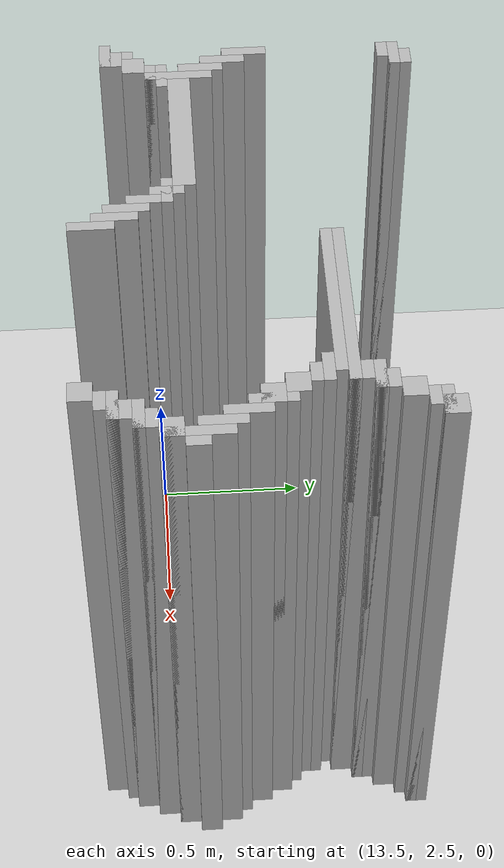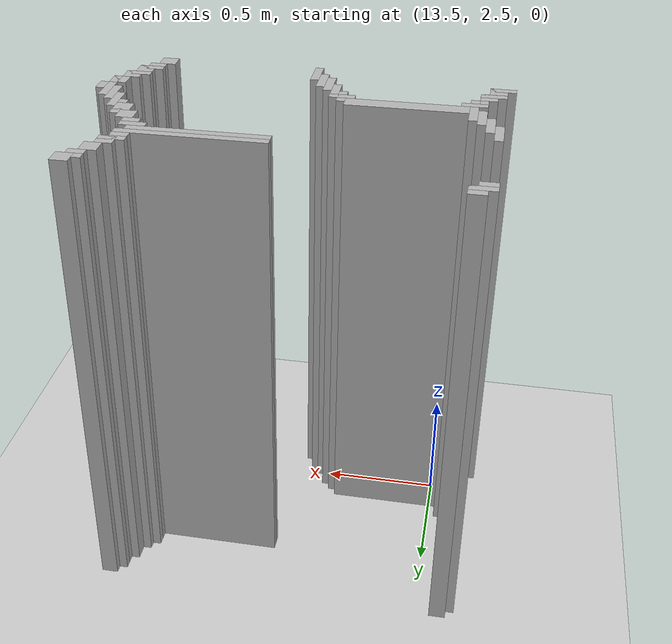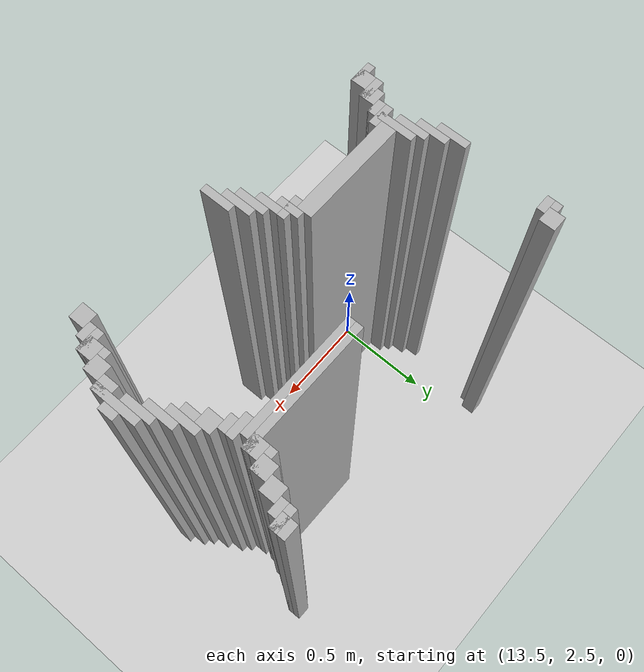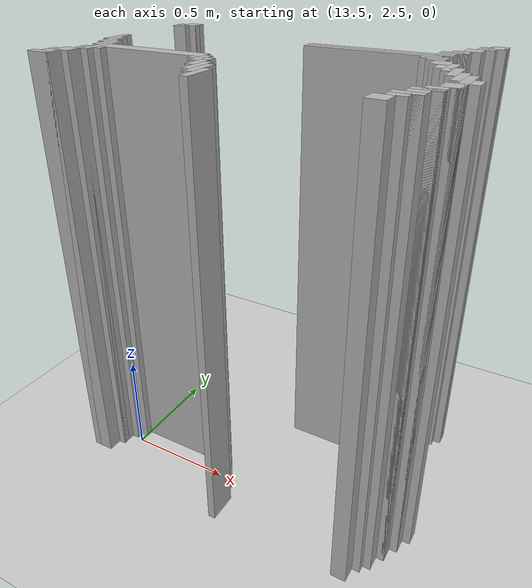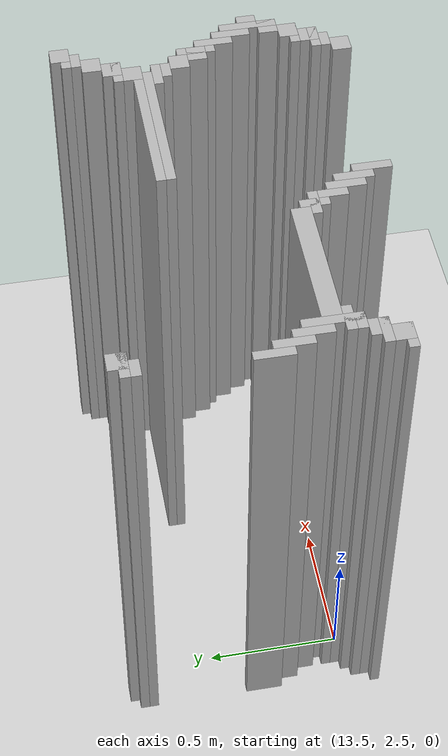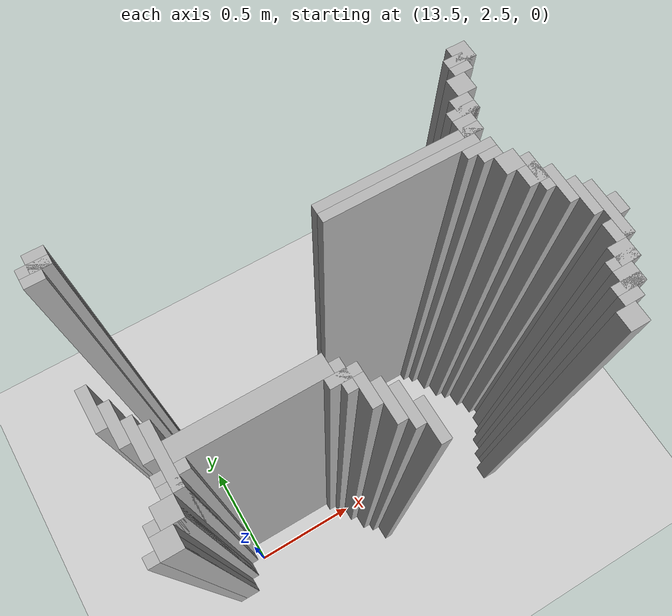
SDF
<sdf version="1.6">
 <world name="slam_world">
  <model name="ground_plane">
   <static>true</static>
   <link name="link">
    <collision name="collision">
     <geometry><plane><normal>0 0 1</normal><size>100 100</size></plane></geometry>
    </collision>
    <visual name="visual">
     <geometry><plane><normal>0 0 1</normal><size>100 100</size></plane></geometry>
     <material>
      <ambient>0.8 0.8 0.8 1</ambient>
      <diffuse>0.8 0.8 0.8 1</diffuse>
      <specular>0.8 0.8 0.8 1</specular>
     </material>
    </visual>
   </link>
  </model>
  <model name="wall_4657">
   <static>true</static>
   <pose>13.39907192575406 3.3062645011600926 1.0 0 0 0</pose>
   <link name="link">
    <collision name="collision">
     <geometry><box><size>0.06960556844547564 0.06960556844547564 2.0</size></box></geometry>
    </collision>
    <visual name="visual">
     <geometry><box><size>0.06960556844547564 0.06960556844547564 2.0</size></box></geometry>
     <material><ambient>0.5 0.5 0.5 1</ambient><diffuse>0.7 0.7 0.7 1</diffuse></material>
    </visual>
   </link>
  </model>
  <model name="wall_4658">
   <static>true</static>
   <pose>14.860788863109049 3.3062645011600926 1.0 0 0 0</pose>
   <link name="link">
    <collision name="collision">
     <geometry><box><size>0.06960556844547564 0.06960556844547564 2.0</size></box></geometry>
    </collision>
    <visual name="visual">
     <geometry><box><size>0.06960556844547564 0.06960556844547564 2.0</size></box></geometry>
     <material><ambient>0.5 0.5 0.5 1</ambient><diffuse>0.7 0.7 0.7 1</diffuse></material>
    </visual>
   </link>
  </model>
  <model name="wall_4674">
   <static>true</static>
   <pose>13.38167053364269 3.288863109048724 1.0 0 0 0</pose>
   <link name="link">
    <collision name="collision">
     <geometry><box><size>0.10440835266821345 0.03480278422273782 2.0</size></box></geometry>
    </collision>
    <visual name="visual">
     <geometry><box><size>0.10440835266821345 0.03480278422273782 2.0</size></box></geometry>
     <material><ambient>0.5 0.5 0.5 1</ambient><diffuse>0.7 0.7 0.7 1</diffuse></material>
    </visual>
   </link>
  </model>
  <model name="wall_4675">
   <static>true</static>
   <pose>14.84338747099768 3.288863109048724 1.0 0 0 0</pose>
   <link name="link">
    <collision name="collision">
     <geometry><box><size>0.10440835266821345 0.03480278422273782 2.0</size></box></geometry>
    </collision>
    <visual name="visual">
     <geometry><box><size>0.10440835266821345 0.03480278422273782 2.0</size></box></geometry>
     <material><ambient>0.5 0.5 0.5 1</ambient><diffuse>0.7 0.7 0.7 1</diffuse></material>
    </visual>
   </link>
  </model>
  <model name="wall_4682">
   <static>true</static>
   <pose>13.364269141531322 3.254060324825986 1.0 0 0 0</pose>
   <link name="link">
    <collision name="collision">
     <geometry><box><size>0.06960556844547564 0.03480278422273782 2.0</size></box></geometry>
    </collision>
    <visual name="visual">
     <geometry><box><size>0.06960556844547564 0.03480278422273782 2.0</size></box></geometry>
     <material><ambient>0.5 0.5 0.5 1</ambient><diffuse>0.7 0.7 0.7 1</diffuse></material>
    </visual>
   </link>
  </model>
  <model name="wall_4683">
   <static>true</static>
   <pose>14.825986078886311 3.254060324825986 1.0 0 0 0</pose>
   <link name="link">
    <collision name="collision">
     <geometry><box><size>0.06960556844547564 0.03480278422273782 2.0</size></box></geometry>
    </collision>
    <visual name="visual">
     <geometry><box><size>0.06960556844547564 0.03480278422273782 2.0</size></box></geometry>
     <material><ambient>0.5 0.5 0.5 1</ambient><diffuse>0.7 0.7 0.7 1</diffuse></material>
    </visual>
   </link>
  </model>
  <model name="wall_4700">
   <static>true</static>
   <pose>14.791183294663572 3.201856148491879 1.0 0 0 0</pose>
   <link name="link">
    <collision name="collision">
     <geometry><box><size>0.06960556844547564 0.06960556844547564 2.0</size></box></geometry>
    </collision>
    <visual name="visual">
     <geometry><box><size>0.06960556844547564 0.06960556844547564 2.0</size></box></geometry>
     <material><ambient>0.5 0.5 0.5 1</ambient><diffuse>0.7 0.7 0.7 1</diffuse></material>
    </visual>
   </link>
  </model>
  <model name="wall_4717">
   <static>true</static>
   <pose>14.756380510440835 3.1322505800464038 1.0 0 0 0</pose>
   <link name="link">
    <collision name="collision">
     <geometry><box><size>0.06960556844547564 0.06960556844547564 2.0</size></box></geometry>
    </collision>
    <visual name="visual">
     <geometry><box><size>0.06960556844547564 0.06960556844547564 2.0</size></box></geometry>
     <material><ambient>0.5 0.5 0.5 1</ambient><diffuse>0.7 0.7 0.7 1</diffuse></material>
    </visual>
   </link>
  </model>
  <model name="wall_4734">
   <static>true</static>
   <pose>14.738979118329466 3.1148491879350346 1.0 0 0 0</pose>
   <link name="link">
    <collision name="collision">
     <geometry><box><size>0.10440835266821345 0.03480278422273782 2.0</size></box></geometry>
    </collision>
    <visual name="visual">
     <geometry><box><size>0.10440835266821345 0.03480278422273782 2.0</size></box></geometry>
     <material><ambient>0.5 0.5 0.5 1</ambient><diffuse>0.7 0.7 0.7 1</diffuse></material>
    </visual>
   </link>
  </model>
  <model name="wall_4742">
   <static>true</static>
   <pose>14.721577726218097 3.062645011600928 1.0 0 0 0</pose>
   <link name="link">
    <collision name="collision">
     <geometry><box><size>0.06960556844547564 0.06960556844547564 2.0</size></box></geometry>
    </collision>
    <visual name="visual">
     <geometry><box><size>0.06960556844547564 0.06960556844547564 2.0</size></box></geometry>
     <material><ambient>0.5 0.5 0.5 1</ambient><diffuse>0.7 0.7 0.7 1</diffuse></material>
    </visual>
   </link>
  </model>
  <model name="wall_4755">
   <static>true</static>
   <pose>14.460556844547563 3.045243619489559 1.0 0 0 0</pose>
   <link name="link">
    <collision name="collision">
     <geometry><box><size>0.5916473317865429 0.03480278422273782 2.0</size></box></geometry>
    </collision>
    <visual name="visual">
     <geometry><box><size>0.5916473317865429 0.03480278422273782 2.0</size></box></geometry>
     <material><ambient>0.5 0.5 0.5 1</ambient><diffuse>0.7 0.7 0.7 1</diffuse></material>
    </visual>
   </link>
  </model>
  <model name="wall_4763">
   <static>true</static>
   <pose>14.443155452436194 3.010440835266821 1.0 0 0 0</pose>
   <link name="link">
    <collision name="collision">
     <geometry><box><size>0.5568445475638051 0.03480278422273782 2.0</size></box></geometry>
    </collision>
    <visual name="visual">
     <geometry><box><size>0.5568445475638051 0.03480278422273782 2.0</size></box></geometry>
     <material><ambient>0.5 0.5 0.5 1</ambient><diffuse>0.7 0.7 0.7 1</diffuse></material>
    </visual>
   </link>
  </model>
  <model name="wall_4776">
   <static>true</static>
   <pose>14.704176334106728 2.975638051044083 1.0 0 0 0</pose>
   <link name="link">
    <collision name="collision">
     <geometry><box><size>0.10440835266821345 0.03480278422273782 2.0</size></box></geometry>
    </collision>
    <visual name="visual">
     <geometry><box><size>0.10440835266821345 0.03480278422273782 2.0</size></box></geometry>
     <material><ambient>0.5 0.5 0.5 1</ambient><diffuse>0.7 0.7 0.7 1</diffuse></material>
    </visual>
   </link>
  </model>
  <model name="wall_4783">
   <static>true</static>
   <pose>14.721577726218097 2.9408352668213458 1.0 0 0 0</pose>
   <link name="link">
    <collision name="collision">
     <geometry><box><size>0.06960556844547564 0.03480278422273782 2.0</size></box></geometry>
    </collision>
    <visual name="visual">
     <geometry><box><size>0.06960556844547564 0.03480278422273782 2.0</size></box></geometry>
     <material><ambient>0.5 0.5 0.5 1</ambient><diffuse>0.7 0.7 0.7 1</diffuse></material>
    </visual>
   </link>
  </model>
  <model name="wall_4796">
   <static>true</static>
   <pose>14.756380510440835 2.8886310904872388 1.0 0 0 0</pose>
   <link name="link">
    <collision name="collision">
     <geometry><box><size>0.06960556844547564 0.06960556844547564 2.0</size></box></geometry>
    </collision>
    <visual name="visual">
     <geometry><box><size>0.06960556844547564 0.06960556844547564 2.0</size></box></geometry>
     <material><ambient>0.5 0.5 0.5 1</ambient><diffuse>0.7 0.7 0.7 1</diffuse></material>
    </visual>
   </link>
  </model>
  <model name="wall_4808">
   <static>true</static>
   <pose>13.346867749419953 2.819025522041763 1.0 0 0 0</pose>
   <link name="link">
    <collision name="collision">
     <geometry><box><size>0.03480278422273782 0.13921113689095127 2.0</size></box></geometry>
    </collision>
    <visual name="visual">
     <geometry><box><size>0.03480278422273782 0.13921113689095127 2.0</size></box></geometry>
     <material><ambient>0.5 0.5 0.5 1</ambient><diffuse>0.7 0.7 0.7 1</diffuse></material>
    </visual>
   </link>
  </model>
  <model name="wall_4809">
   <static>true</static>
   <pose>14.80858468677494 2.819025522041763 1.0 0 0 0</pose>
   <link name="link">
    <collision name="collision">
     <geometry><box><size>0.03480278422273782 0.13921113689095127 2.0</size></box></geometry>
    </collision>
    <visual name="visual">
     <geometry><box><size>0.03480278422273782 0.13921113689095127 2.0</size></box></geometry>
     <material><ambient>0.5 0.5 0.5 1</ambient><diffuse>0.7 0.7 0.7 1</diffuse></material>
    </visual>
   </link>
  </model>
  <model name="wall_4822">
   <static>true</static>
   <pose>14.791183294663572 2.819025522041763 1.0 0 0 0</pose>
   <link name="link">
    <collision name="collision">
     <geometry><box><size>0.06960556844547564 0.06960556844547564 2.0</size></box></geometry>
    </collision>
    <visual name="visual">
     <geometry><box><size>0.06960556844547564 0.06960556844547564 2.0</size></box></geometry>
     <material><ambient>0.5 0.5 0.5 1</ambient><diffuse>0.7 0.7 0.7 1</diffuse></material>
    </visual>
   </link>
  </model>
  <model name="wall_4834">
   <static>true</static>
   <pose>13.38167053364269 2.7494199535962878 1.0 0 0 0</pose>
   <link name="link">
    <collision name="collision">
     <geometry><box><size>0.03480278422273782 0.13921113689095127 2.0</size></box></geometry>
    </collision>
    <visual name="visual">
     <geometry><box><size>0.03480278422273782 0.13921113689095127 2.0</size></box></geometry>
     <material><ambient>0.5 0.5 0.5 1</ambient><diffuse>0.7 0.7 0.7 1</diffuse></material>
    </visual>
   </link>
  </model>
  <model name="wall_4835">
   <static>true</static>
   <pose>14.84338747099768 2.7494199535962878 1.0 0 0 0</pose>
   <link name="link">
    <collision name="collision">
     <geometry><box><size>0.03480278422273782 0.13921113689095127 2.0</size></box></geometry>
    </collision>
    <visual name="visual">
     <geometry><box><size>0.03480278422273782 0.13921113689095127 2.0</size></box></geometry>
     <material><ambient>0.5 0.5 0.5 1</ambient><diffuse>0.7 0.7 0.7 1</diffuse></material>
    </visual>
   </link>
  </model>
  <model name="wall_4851">
   <static>true</static>
   <pose>13.416473317865428 2.679814385150812 1.0 0 0 0</pose>
   <link name="link">
    <collision name="collision">
     <geometry><box><size>0.03480278422273782 0.13921113689095127 2.0</size></box></geometry>
    </collision>
    <visual name="visual">
     <geometry><box><size>0.03480278422273782 0.13921113689095127 2.0</size></box></geometry>
     <material><ambient>0.5 0.5 0.5 1</ambient><diffuse>0.7 0.7 0.7 1</diffuse></material>
    </visual>
   </link>
  </model>
  <model name="wall_4852">
   <static>true</static>
   <pose>14.878190255220417 2.679814385150812 1.0 0 0 0</pose>
   <link name="link">
    <collision name="collision">
     <geometry><box><size>0.03480278422273782 0.13921113689095127 2.0</size></box></geometry>
    </collision>
    <visual name="visual">
     <geometry><box><size>0.03480278422273782 0.13921113689095127 2.0</size></box></geometry>
     <material><ambient>0.5 0.5 0.5 1</ambient><diffuse>0.7 0.7 0.7 1</diffuse></material>
    </visual>
   </link>
  </model>
  <model name="wall_4864">
   <static>true</static>
   <pose>13.451276102088167 2.6102088167053363 1.0 0 0 0</pose>
   <link name="link">
    <collision name="collision">
     <geometry><box><size>0.03480278422273782 0.2088167053364269 2.0</size></box></geometry>
    </collision>
    <visual name="visual">
     <geometry><box><size>0.03480278422273782 0.2088167053364269 2.0</size></box></geometry>
     <material><ambient>0.5 0.5 0.5 1</ambient><diffuse>0.7 0.7 0.7 1</diffuse></material>
    </visual>
   </link>
  </model>
  <model name="wall_4865">
   <static>true</static>
   <pose>14.912993039443155 2.6102088167053363 1.0 0 0 0</pose>
   <link name="link">
    <collision name="collision">
     <geometry><box><size>0.03480278422273782 0.2088167053364269 2.0</size></box></geometry>
    </collision>
    <visual name="visual">
     <geometry><box><size>0.03480278422273782 0.2088167053364269 2.0</size></box></geometry>
     <material><ambient>0.5 0.5 0.5 1</ambient><diffuse>0.7 0.7 0.7 1</diffuse></material>
    </visual>
   </link>
  </model>
  <model name="wall_4882">
   <static>true</static>
   <pose>13.7122969837587 2.6102088167053363 1.0 0 0 0</pose>
   <link name="link">
    <collision name="collision">
     <geometry><box><size>0.4872389791183295 0.06960556844547564 2.0</size></box></geometry>
    </collision>
    <visual name="visual">
     <geometry><box><size>0.4872389791183295 0.06960556844547564 2.0</size></box></geometry>
     <material><ambient>0.5 0.5 0.5 1</ambient><diffuse>0.7 0.7 0.7 1</diffuse></material>
    </visual>
   </link>
  </model>
  <model name="wall_4883">
   <static>true</static>
   <pose>14.947795823665892 2.6102088167053363 1.0 0 0 0</pose>
   <link name="link">
    <collision name="collision">
     <geometry><box><size>0.03480278422273782 0.06960556844547564 2.0</size></box></geometry>
    </collision>
    <visual name="visual">
     <geometry><box><size>0.03480278422273782 0.06960556844547564 2.0</size></box></geometry>
     <material><ambient>0.5 0.5 0.5 1</ambient><diffuse>0.7 0.7 0.7 1</diffuse></material>
    </visual>
   </link>
  </model>
  <model name="wall_4894">
   <static>true</static>
   <pose>13.973317865429234 2.5580046403712298 1.0 0 0 0</pose>
   <link name="link">
    <collision name="collision">
     <geometry><box><size>0.03480278422273782 0.10440835266821345 2.0</size></box></geometry>
    </collision>
    <visual name="visual">
     <geometry><box><size>0.03480278422273782 0.10440835266821345 2.0</size></box></geometry>
     <material><ambient>0.5 0.5 0.5 1</ambient><diffuse>0.7 0.7 0.7 1</diffuse></material>
    </visual>
   </link>
  </model>
  <model name="wall_4909">
   <static>true</static>
   <pose>13.451276102088167 2.5580046403712298 1.0 0 0 0</pose>
   <link name="link">
    <collision name="collision">
     <geometry><box><size>0.10440835266821345 0.03480278422273782 2.0</size></box></geometry>
    </collision>
    <visual name="visual">
     <geometry><box><size>0.10440835266821345 0.03480278422273782 2.0</size></box></geometry>
     <material><ambient>0.5 0.5 0.5 1</ambient><diffuse>0.7 0.7 0.7 1</diffuse></material>
    </visual>
   </link>
  </model>
  <model name="wall_4910">
   <static>true</static>
   <pose>13.973317865429234 2.5580046403712298 1.0 0 0 0</pose>
   <link name="link">
    <collision name="collision">
     <geometry><box><size>0.10440835266821345 0.03480278422273782 2.0</size></box></geometry>
    </collision>
    <visual name="visual">
     <geometry><box><size>0.10440835266821345 0.03480278422273782 2.0</size></box></geometry>
     <material><ambient>0.5 0.5 0.5 1</ambient><diffuse>0.7 0.7 0.7 1</diffuse></material>
    </visual>
   </link>
  </model>
  <model name="wall_4911">
   <static>true</static>
   <pose>14.895591647331786 2.5406032482598606 1.0 0 0 0</pose>
   <link name="link">
    <collision name="collision">
     <geometry><box><size>0.06960556844547564 0.06960556844547564 2.0</size></box></geometry>
    </collision>
    <visual name="visual">
     <geometry><box><size>0.06960556844547564 0.06960556844547564 2.0</size></box></geometry>
     <material><ambient>0.5 0.5 0.5 1</ambient><diffuse>0.7 0.7 0.7 1</diffuse></material>
    </visual>
   </link>
  </model>
  <model name="wall_4920">
   <static>true</static>
   <pose>13.433874709976797 2.523201856148492 1.0 0 0 0</pose>
   <link name="link">
    <collision name="collision">
     <geometry><box><size>0.06960556844547564 0.03480278422273782 2.0</size></box></geometry>
    </collision>
    <visual name="visual">
     <geometry><box><size>0.06960556844547564 0.03480278422273782 2.0</size></box></geometry>
     <material><ambient>0.5 0.5 0.5 1</ambient><diffuse>0.7 0.7 0.7 1</diffuse></material>
    </visual>
   </link>
  </model>
  <model name="wall_4921">
   <static>true</static>
   <pose>14.008120649651971 2.488399071925754 1.0 0 0 0</pose>
   <link name="link">
    <collision name="collision">
     <geometry><box><size>0.03480278422273782 0.10440835266821345 2.0</size></box></geometry>
    </collision>
    <visual name="visual">
     <geometry><box><size>0.03480278422273782 0.10440835266821345 2.0</size></box></geometry>
     <material><ambient>0.5 0.5 0.5 1</ambient><diffuse>0.7 0.7 0.7 1</diffuse></material>
    </visual>
   </link>
  </model>
  <model name="wall_4936">
   <static>true</static>
   <pose>13.39907192575406 2.470997679814385 1.0 0 0 0</pose>
   <link name="link">
    <collision name="collision">
     <geometry><box><size>0.06960556844547564 0.06960556844547564 2.0</size></box></geometry>
    </collision>
    <visual name="visual">
     <geometry><box><size>0.06960556844547564 0.06960556844547564 2.0</size></box></geometry>
     <material><ambient>0.5 0.5 0.5 1</ambient><diffuse>0.7 0.7 0.7 1</diffuse></material>
    </visual>
   </link>
  </model>
  <model name="wall_4937">
   <static>true</static>
   <pose>14.042923433874709 2.436194895591647 1.0 0 0 0</pose>
   <link name="link">
    <collision name="collision">
     <geometry><box><size>0.03480278422273782 0.13921113689095127 2.0</size></box></geometry>
    </collision>
    <visual name="visual">
     <geometry><box><size>0.03480278422273782 0.13921113689095127 2.0</size></box></geometry>
     <material><ambient>0.5 0.5 0.5 1</ambient><diffuse>0.7 0.7 0.7 1</diffuse></material>
    </visual>
   </link>
  </model>
  <model name="wall_4938">
   <static>true</static>
   <pose>14.860788863109049 2.470997679814385 1.0 0 0 0</pose>
   <link name="link">
    <collision name="collision">
     <geometry><box><size>0.06960556844547564 0.06960556844547564 2.0</size></box></geometry>
    </collision>
    <visual name="visual">
     <geometry><box><size>0.06960556844547564 0.06960556844547564 2.0</size></box></geometry>
     <material><ambient>0.5 0.5 0.5 1</ambient><diffuse>0.7 0.7 0.7 1</diffuse></material>
    </visual>
   </link>
  </model>
  <model name="wall_4953">
   <static>true</static>
   <pose>13.38167053364269 2.453596287703016 1.0 0 0 0</pose>
   <link name="link">
    <collision name="collision">
     <geometry><box><size>0.10440835266821345 0.03480278422273782 2.0</size></box></geometry>
    </collision>
    <visual name="visual">
     <geometry><box><size>0.10440835266821345 0.03480278422273782 2.0</size></box></geometry>
     <material><ambient>0.5 0.5 0.5 1</ambient><diffuse>0.7 0.7 0.7 1</diffuse></material>
    </visual>
   </link>
  </model>
  <model name="wall_4954">
   <static>true</static>
   <pose>14.077726218097448 2.4013921113689096 1.0 0 0 0</pose>
   <link name="link">
    <collision name="collision">
     <geometry><box><size>0.03480278422273782 0.13921113689095127 2.0</size></box></geometry>
    </collision>
    <visual name="visual">
     <geometry><box><size>0.03480278422273782 0.13921113689095127 2.0</size></box></geometry>
     <material><ambient>0.5 0.5 0.5 1</ambient><diffuse>0.7 0.7 0.7 1</diffuse></material>
    </visual>
   </link>
  </model>
  <model name="wall_4955">
   <static>true</static>
   <pose>14.84338747099768 2.453596287703016 1.0 0 0 0</pose>
   <link name="link">
    <collision name="collision">
     <geometry><box><size>0.10440835266821345 0.03480278422273782 2.0</size></box></geometry>
    </collision>
    <visual name="visual">
     <geometry><box><size>0.10440835266821345 0.03480278422273782 2.0</size></box></geometry>
     <material><ambient>0.5 0.5 0.5 1</ambient><diffuse>0.7 0.7 0.7 1</diffuse></material>
    </visual>
   </link>
  </model>
  <model name="wall_4968">
   <static>true</static>
   <pose>13.364269141531322 2.4013921113689096 1.0 0 0 0</pose>
   <link name="link">
    <collision name="collision">
     <geometry><box><size>0.06960556844547564 0.06960556844547564 2.0</size></box></geometry>
    </collision>
    <visual name="visual">
     <geometry><box><size>0.06960556844547564 0.06960556844547564 2.0</size></box></geometry>
     <material><ambient>0.5 0.5 0.5 1</ambient><diffuse>0.7 0.7 0.7 1</diffuse></material>
    </visual>
   </link>
  </model>
  <model name="wall_4969">
   <static>true</static>
   <pose>14.825986078886311 2.4013921113689096 1.0 0 0 0</pose>
   <link name="link">
    <collision name="collision">
     <geometry><box><size>0.06960556844547564 0.06960556844547564 2.0</size></box></geometry>
    </collision>
    <visual name="visual">
     <geometry><box><size>0.06960556844547564 0.06960556844547564 2.0</size></box></geometry>
     <material><ambient>0.5 0.5 0.5 1</ambient><diffuse>0.7 0.7 0.7 1</diffuse></material>
    </visual>
   </link>
  </model>
  <model name="wall_4984">
   <static>true</static>
   <pose>13.346867749419953 2.3839907192575405 1.0 0 0 0</pose>
   <link name="link">
    <collision name="collision">
     <geometry><box><size>0.10440835266821345 0.03480278422273782 2.0</size></box></geometry>
    </collision>
    <visual name="visual">
     <geometry><box><size>0.10440835266821345 0.03480278422273782 2.0</size></box></geometry>
     <material><ambient>0.5 0.5 0.5 1</ambient><diffuse>0.7 0.7 0.7 1</diffuse></material>
    </visual>
   </link>
  </model>
  <model name="wall_4985">
   <static>true</static>
   <pose>14.112529002320185 2.331786542923434 1.0 0 0 0</pose>
   <link name="link">
    <collision name="collision">
     <geometry><box><size>0.03480278422273782 0.13921113689095127 2.0</size></box></geometry>
    </collision>
    <visual name="visual">
     <geometry><box><size>0.03480278422273782 0.13921113689095127 2.0</size></box></geometry>
     <material><ambient>0.5 0.5 0.5 1</ambient><diffuse>0.7 0.7 0.7 1</diffuse></material>
    </visual>
   </link>
  </model>
  <model name="wall_4986">
   <static>true</static>
   <pose>14.80858468677494 2.3839907192575405 1.0 0 0 0</pose>
   <link name="link">
    <collision name="collision">
     <geometry><box><size>0.10440835266821345 0.03480278422273782 2.0</size></box></geometry>
    </collision>
    <visual name="visual">
     <geometry><box><size>0.10440835266821345 0.03480278422273782 2.0</size></box></geometry>
     <material><ambient>0.5 0.5 0.5 1</ambient><diffuse>0.7 0.7 0.7 1</diffuse></material>
    </visual>
   </link>
  </model>
  <model name="wall_4995">
   <static>true</static>
   <pose>14.791183294663572 2.3491879350348026 1.0 0 0 0</pose>
   <link name="link">
    <collision name="collision">
     <geometry><box><size>0.06960556844547564 0.03480278422273782 2.0</size></box></geometry>
    </collision>
    <visual name="visual">
     <geometry><box><size>0.06960556844547564 0.03480278422273782 2.0</size></box></geometry>
     <material><ambient>0.5 0.5 0.5 1</ambient><diffuse>0.7 0.7 0.7 1</diffuse></material>
    </visual>
   </link>
  </model>
  <model name="wall_5012">
   <static>true</static>
   <pose>14.756380510440835 2.296983758700696 1.0 0 0 0</pose>
   <link name="link">
    <collision name="collision">
     <geometry><box><size>0.06960556844547564 0.06960556844547564 2.0</size></box></geometry>
    </collision>
    <visual name="visual">
     <geometry><box><size>0.06960556844547564 0.06960556844547564 2.0</size></box></geometry>
     <material><ambient>0.5 0.5 0.5 1</ambient><diffuse>0.7 0.7 0.7 1</diffuse></material>
    </visual>
   </link>
  </model>
 </world>
</sdf>
